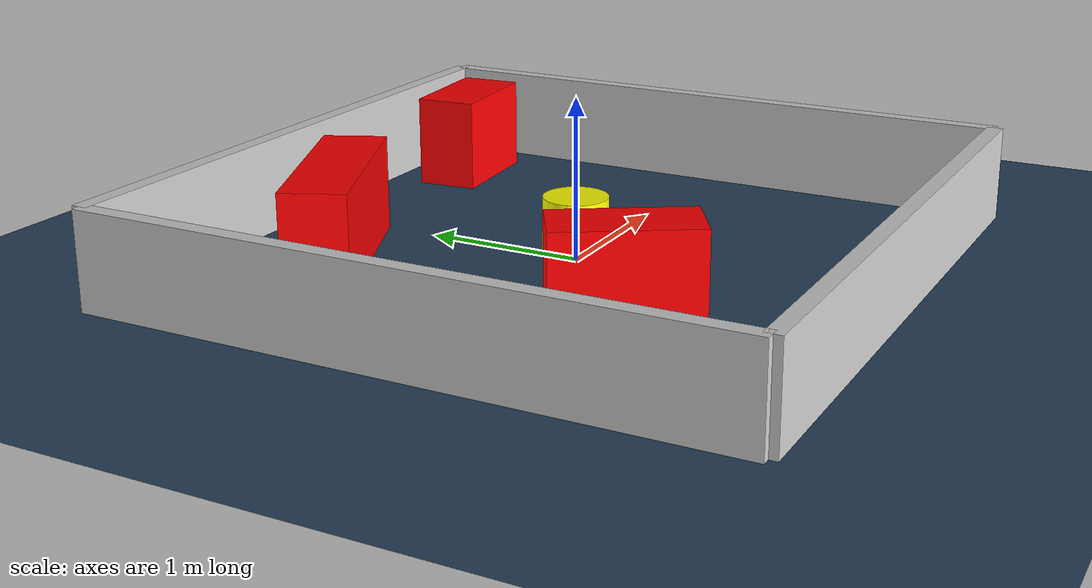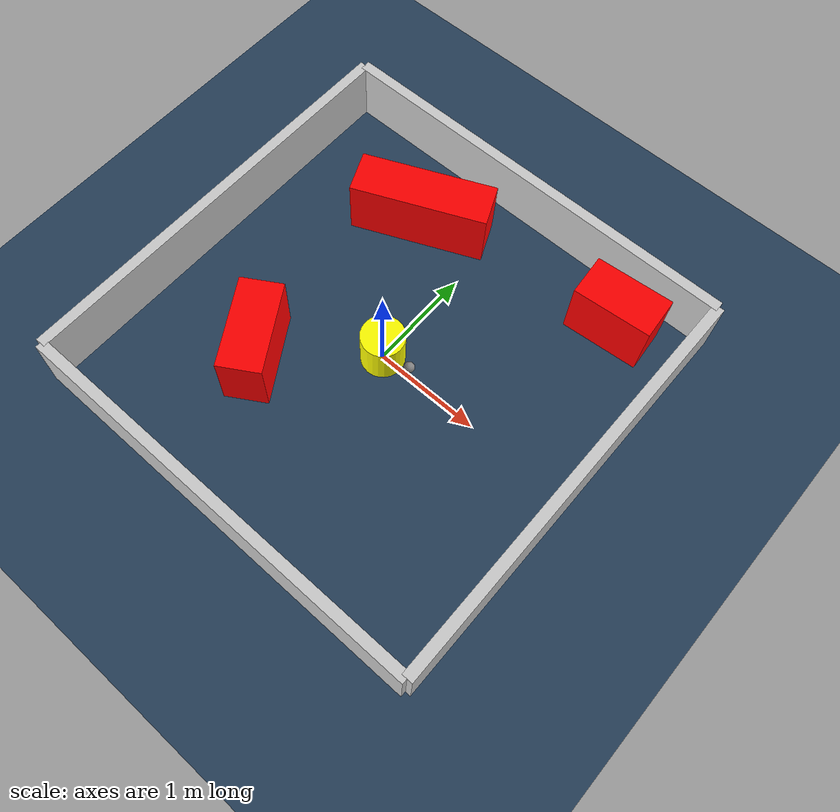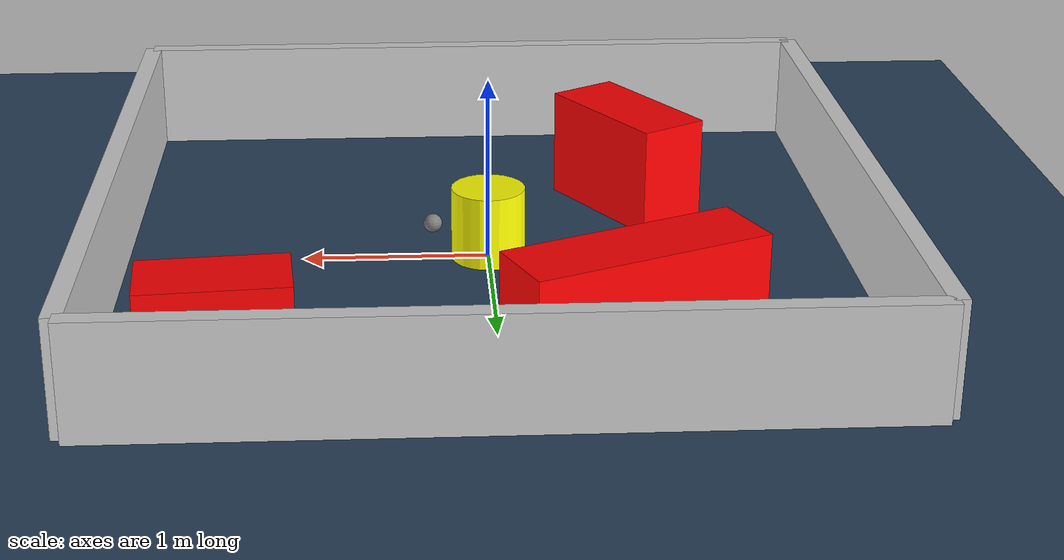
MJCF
<?xml version="1.0" ?>
<mujoco model="generated_environment">
  <option timestep="0.01" integrator="RK4" cone="elliptic"/>
  <default>
    <geom density="1"/>
  </default>
  <asset>
    <texture builtin="gradient" height="3072" rgb1="0.3 0.5 0.7" rgb2="0 0 0" type="skybox" width="512"/>
    <texture builtin="checker" height="300" mark="edge" markrgb="0.8 0.8 0.8" name="groundplane" rgb1="0.2 0.3 0.4" rgb2="0.1 0.2 0.3" type="2d" width="300"/>
    <material name="groundplane" reflectance="0.2" texrepeat="5 5" texture="groundplane" texuniform="true"/>
    <material name="robot" rgba="0.0 1.0 0.0 1"/>
  </asset>
  <worldbody>
    <light dir="0 0 -1" directional="true" pos="0 0 1.5"/>
    <geom condim="4" friction="1.0 0.005 0.001" material="groundplane" name="floor" size="0 0 0.05" type="plane"/>
    <body name="walls">
      <geom name="wall_1" condim="4" pos="-2.0 0.0 0.3" rgba="0.800000011920929 0.800000011920929 0.800000011920929 1.0" size="0.05 2.0 0.3" type="box"/>
      <geom name="wall_2" condim="4" pos="2.0 0.0 0.3" rgba="0.800000011920929 0.800000011920929 0.800000011920929 1.0" size="0.05 2.0 0.3" type="box"/>
      <geom name="wall_3" condim="4" pos="0.0 -2.0 0.3" rgba="0.800000011920929 0.800000011920929 0.800000011920929 1.0" size="2.0 0.05 0.3" type="box"/>
      <geom name="wall_4" condim="4" pos="0.0 2.0 0.3" rgba="0.800000011920929 0.800000011920929 0.800000011920929 1.0" size="2.0 0.05 0.3" type="box"/>
    </body>
    <body name="robot">
      <joint name="joint_x" type="slide" pos="0 0 0" axis="1 0 0"/>
      <joint name="joint_y" type="slide" pos="0 0 0" axis="0 1 0"/>
      <geom name="robot" type="sphere" pos="0.3 0.0 0.2" size="0.05" mass="5." friction="1.0 0.005 0.0001" condim="4" rgba="0.5 0.5 0.5 1.0"/>
      <site name="sensor_ball"/>
    </body>
    <body name="obstacle_movable_1">
      <geom name="obstacle_movable_1" condim="4" pos="0.0 0.0 0.2" euler="0 0 0.0" friction="1.0 0.005 0.001" rgba="1.0 1.0 0.0 1.0" size="0.2 0.2 0.0" type="cylinder" mass="0.1"/>
      <joint type="free"/>
    </body>
    <body name="obstacle_2_static">
      <geom name="obstacle_2_static" condim="4" pos="-0.6472399903029339 1.2791913884184212 0.3" euler="0 0 203.83097269903135" friction="1.0 0.005 0.001" rgba="1 0 0 1" size="0.6332077727442692 0.2 0.3" type="box"/>
    </body>
    <body name="obstacle_3_static">
      <geom name="obstacle_3_static" condim="4" pos="1.3380627610724765 1.5501160826298965 0.3" euler="0 0 4.7969553383156605" friction="1.0 0.005 0.001" rgba="1 0 0 1" size="0.36389523941343194 0.2 0.3" type="box"/>
    </body>
    <body name="obstacle_4_static">
      <geom name="obstacle_4_static" condim="4" pos="-0.8318357824488991 -0.7266567841460827 0.3" euler="0 0 121.38526808870417" friction="1.0 0.005 0.001" rgba="1 0 0 1" size="0.427903479308956 0.2 0.3" type="box"/>
    </body>
  </worldbody>
  <actuator>
    <motor name="actuator_x" joint="joint_x" gear="1" ctrlrange="-1 1"/>
    <motor name="actuator_y" joint="joint_y" gear="1" ctrlrange="-1 1"/>
  </actuator>
</mujoco>
